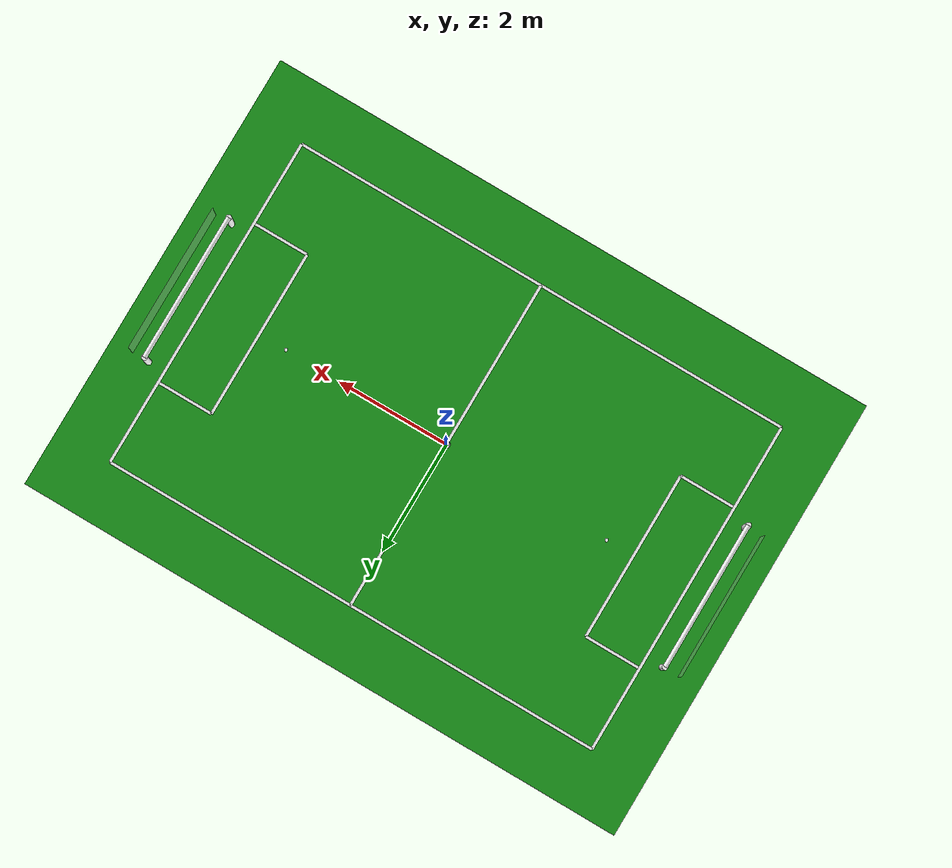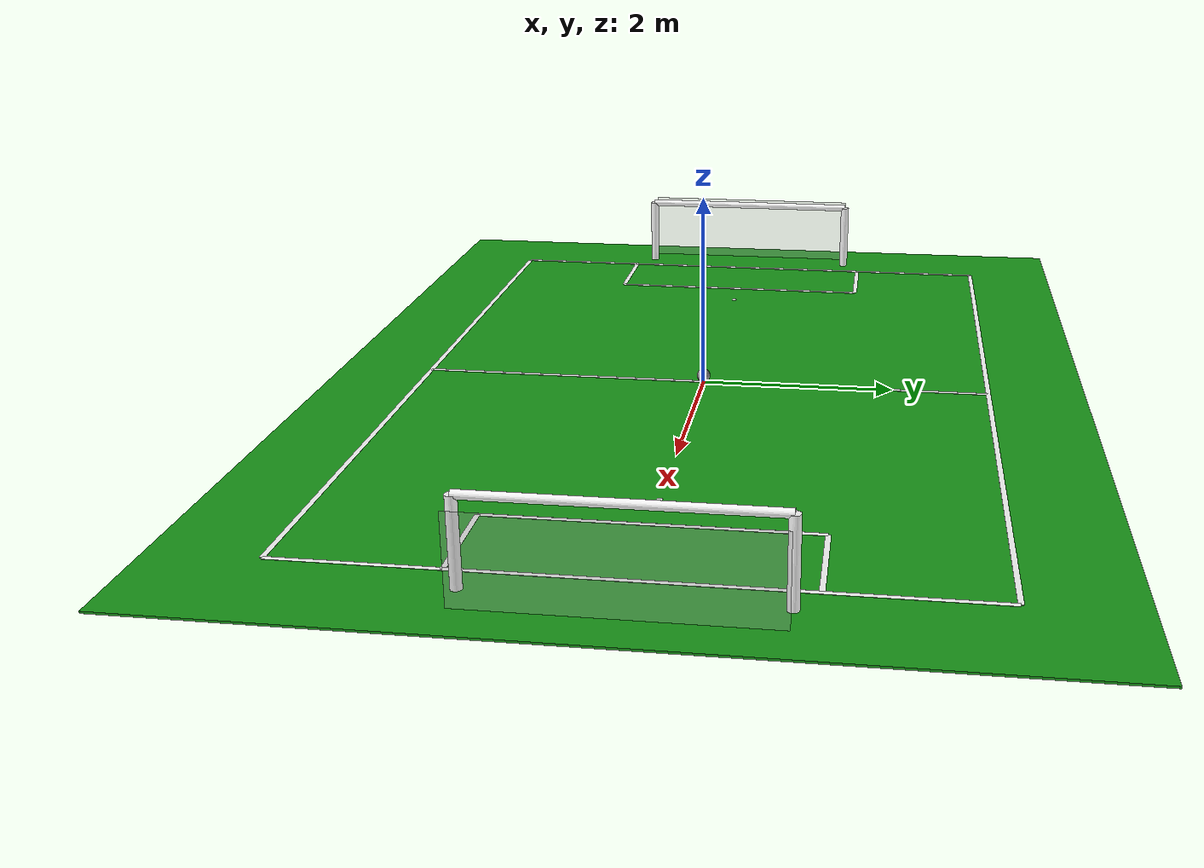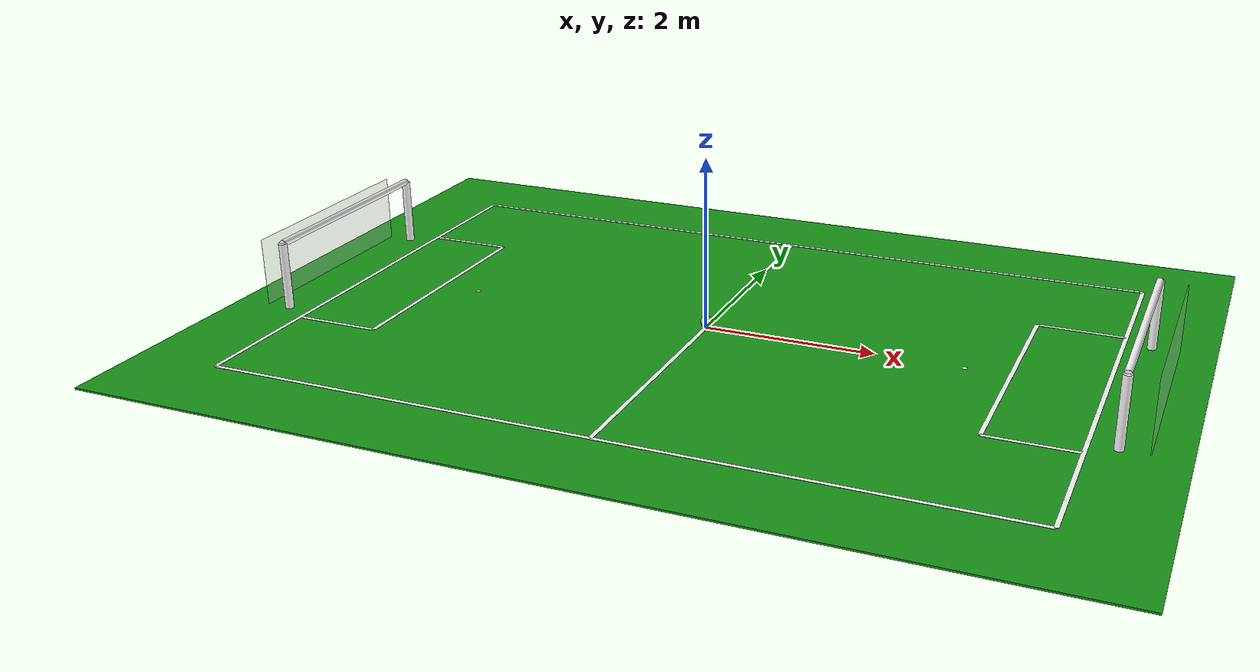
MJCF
<!-- RoboCup HSL Match Scene: Field + Ball template -->
<!-- Robots are added programmatically by the evaluation/training scripts -->
<mujoco model="robocup_match_scene">
  <compiler angle="radian" autolimits="true"/>
  <option timestep="0.002" gravity="0 0 -9.81" integrator="implicitfast">
    <flag contact="enable"/>
  </option>

  <visual>
    <headlight ambient="0.4 0.4 0.4" diffuse="0.8 0.8 0.8"/>
    <quality shadowsize="4096"/>
    <global offwidth="1920" offheight="1080"/>
  </visual>

  <asset>
    <texture name="field_green" type="2d" builtin="flat" rgb1="0.1 0.6 0.1" rgb2="0.1 0.55 0.1" width="512" height="512"/>
    <material name="field_mat" texture="field_green" texrepeat="4 4" specular="0.1"/>
    <material name="line_mat" rgba="1 1 1 1" specular="0.0"/>
    <material name="goal_mat" rgba="1 1 1 1" specular="0.3" shininess="0.5"/>
    <texture name="ball_tex" type="2d" builtin="checker" rgb1="1 1 1" rgb2="0.1 0.1 0.1" width="64" height="64"/>
    <material name="ball_mat" texture="ball_tex" texrepeat="4 4"/>
    <texture name="skybox" type="skybox" builtin="gradient" rgb1="0.4 0.6 0.9" rgb2="0.1 0.1 0.3" width="512" height="512"/>
  </asset>

  <default>
    <geom condim="3" friction="1.0 0.005 0.0001"/>
  </default>

  <worldbody>
    <light name="overhead" pos="0 0 8" dir="0 0 -1" diffuse="1 1 1" specular="0.3 0.3 0.3" cutoff="60" directional="true"/>
    <light name="side" pos="6 0 5" dir="-1 0 -0.5" diffuse="0.5 0.5 0.5" directional="true"/>

    <!-- Field carpet -->
    <geom name="carpet" type="box" size="5.5 4.0 0.01" pos="0 0 -0.01" material="field_mat" conaffinity="1" contype="1"/>

    <!-- Field lines -->
    <geom name="touchline_pos" type="box" size="4.5 0.025 0.001" pos="0 3.0 0.001" material="line_mat" conaffinity="0" contype="0"/>
    <geom name="touchline_neg" type="box" size="4.5 0.025 0.001" pos="0 -3.0 0.001" material="line_mat" conaffinity="0" contype="0"/>
    <geom name="goalline_pos" type="box" size="0.025 3.0 0.001" pos="4.5 0 0.001" material="line_mat" conaffinity="0" contype="0"/>
    <geom name="goalline_neg" type="box" size="0.025 3.0 0.001" pos="-4.5 0 0.001" material="line_mat" conaffinity="0" contype="0"/>
    <geom name="center_line" type="box" size="0.025 3.0 0.001" pos="0 0 0.001" material="line_mat" conaffinity="0" contype="0"/>
    <geom name="pa_front_pos" type="box" size="0.025 1.5 0.001" pos="3.5 0 0.001" material="line_mat" conaffinity="0" contype="0"/>
    <geom name="pa_side_pos_t" type="box" size="0.5 0.025 0.001" pos="4.0 1.5 0.001" material="line_mat" conaffinity="0" contype="0"/>
    <geom name="pa_side_pos_b" type="box" size="0.5 0.025 0.001" pos="4.0 -1.5 0.001" material="line_mat" conaffinity="0" contype="0"/>
    <geom name="pa_front_neg" type="box" size="0.025 1.5 0.001" pos="-3.5 0 0.001" material="line_mat" conaffinity="0" contype="0"/>
    <geom name="pa_side_neg_t" type="box" size="0.5 0.025 0.001" pos="-4.0 1.5 0.001" material="line_mat" conaffinity="0" contype="0"/>
    <geom name="pa_side_neg_b" type="box" size="0.5 0.025 0.001" pos="-4.0 -1.5 0.001" material="line_mat" conaffinity="0" contype="0"/>

    <!-- Penalty marks -->
    <geom name="pen_mark_pos" type="cylinder" size="0.03 0.001" pos="3.0 0 0.001" material="line_mat" conaffinity="0" contype="0"/>
    <geom name="pen_mark_neg" type="cylinder" size="0.03 0.001" pos="-3.0 0 0.001" material="line_mat" conaffinity="0" contype="0"/>
    <geom name="center_mark" type="cylinder" size="0.03 0.001" pos="0 0 0.001" material="line_mat" conaffinity="0" contype="0"/>

    <!-- Goals -->
    <body name="goal_pos" pos="4.5 0 0">
      <geom name="post_l_pos" type="cylinder" size="0.05 0.4" pos="0.3 1.3 0.4" material="goal_mat"/>
      <geom name="post_r_pos" type="cylinder" size="0.05 0.4" pos="0.3 -1.3 0.4" material="goal_mat"/>
      <geom name="crossbar_pos" type="cylinder" size="0.04 1.3" pos="0.3 0 0.8" material="goal_mat" euler="1.5708 0 0"/>
      <geom name="net_back_pos" type="box" size="0.005 1.3 0.4" pos="0.6 0 0.4" rgba="0.8 0.8 0.8 0.3"/>
    </body>
    <body name="goal_neg" pos="-4.5 0 0">
      <geom name="post_l_neg" type="cylinder" size="0.05 0.4" pos="-0.3 1.3 0.4" material="goal_mat"/>
      <geom name="post_r_neg" type="cylinder" size="0.05 0.4" pos="-0.3 -1.3 0.4" material="goal_mat"/>
      <geom name="crossbar_neg" type="cylinder" size="0.04 1.3" pos="-0.3 0 0.8" material="goal_mat" euler="1.5708 0 0"/>
      <geom name="net_back_neg" type="box" size="0.005 1.3 0.4" pos="-0.6 0 0.4" rgba="0.8 0.8 0.8 0.3"/>
    </body>

    <!-- Ball -->
    <body name="ball" pos="0 0 0.07">
      <freejoint name="ball_joint"/>
      <geom name="ball_geom" type="sphere" size="0.07" mass="0.35" material="ball_mat"
            solref="-10000 -200" solimp="0.9 0.95 0.001" friction="0.8 0.005 0.0001"/>
    </body>

    <!-- Cameras -->
    <camera name="top_down" pos="0 0 12" euler="0 0 0" fovy="50"/>
    <camera name="side_view" pos="0 -8 3" euler="1.2 0 0" fovy="60"/>
    <camera name="broadcast" pos="0 -7 4" euler="1.05 0 0" fovy="55"/>
  </worldbody>
</mujoco>
